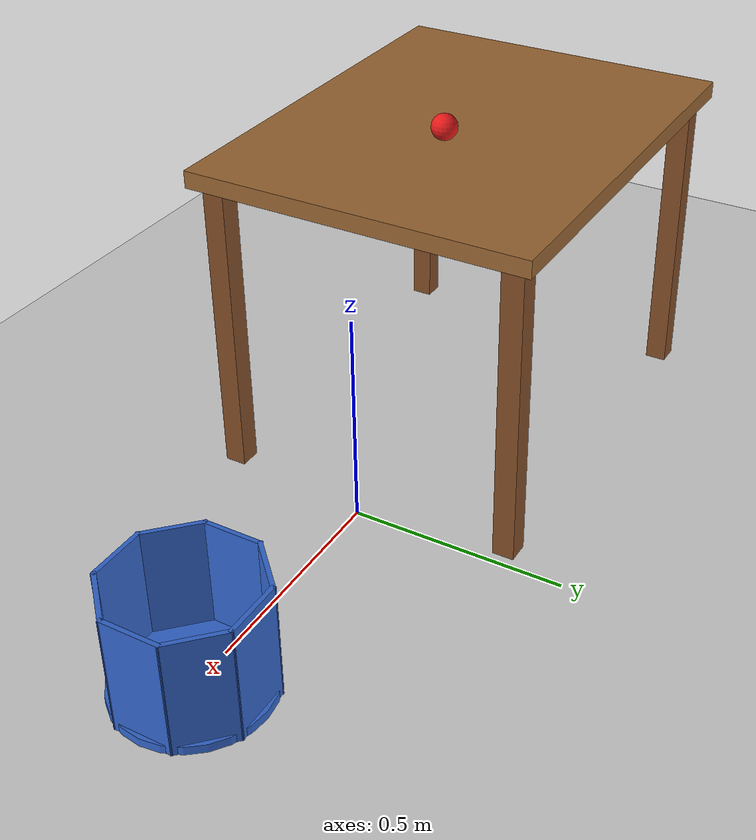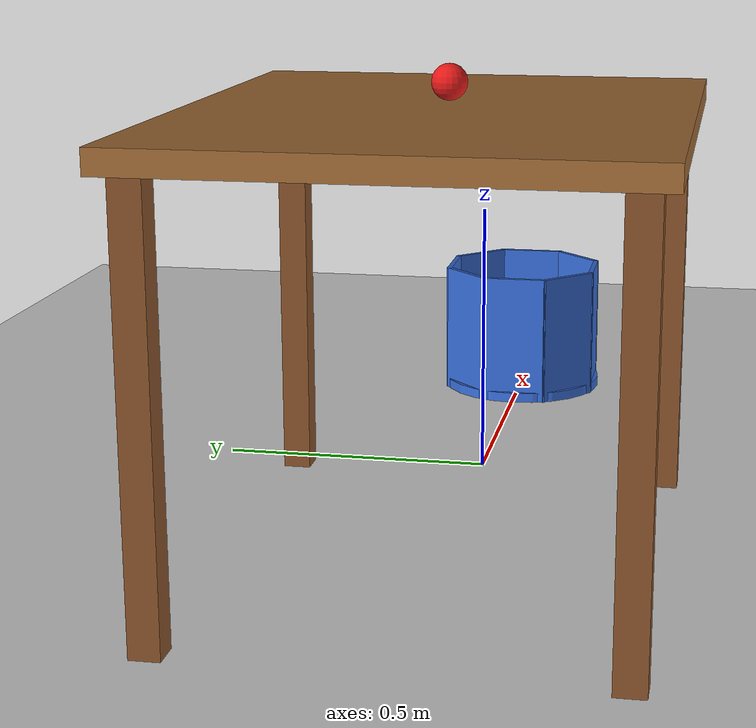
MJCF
<mujoco model="ball_off_table_into_bucket">
  <option timestep="0.002" gravity="0 0 -9.81"/>

  <worldbody>
    <light name="sun" pos="0 0 3" dir="0 0 -1" directional="true"/>
    <geom name="floor" type="plane" size="5 5 0.1" rgba="0.8 0.8 0.8 1"/>

    <!-- Table: top surface at z = 0.75, edge at x = 0 -->
    <geom name="table_top" type="box" pos="-0.5 0 0.73" size="0.5 0.4 0.02" friction="0.8 0.005 0.0001" condim="6" rgba="0.6 0.4 0.2 1"/>
    <geom name="table_leg1" type="box" pos="-0.05 0.35 0.355" size="0.025 0.025 0.355" rgba="0.5 0.3 0.15 1"/>
    <geom name="table_leg2" type="box" pos="-0.05 -0.35 0.355" size="0.025 0.025 0.355" rgba="0.5 0.3 0.15 1"/>
    <geom name="table_leg3" type="box" pos="-0.95 0.35 0.355" size="0.025 0.025 0.355" rgba="0.5 0.3 0.15 1"/>
    <geom name="table_leg4" type="box" pos="-0.95 -0.35 0.355" size="0.025 0.025 0.355" rgba="0.5 0.3 0.15 1"/>

    <!-- Bucket: centre 0.6 m beyond the table edge, inner radius 0.15, rim at 0.27 -->
    <body name="bucket" pos="0.6 0 0">
      <geom name="bucket_bottom" type="cylinder" pos="0 0 0.01" size="0.17 0.01" friction="1 0.05 0.03" condim="6" rgba="0.2 0.4 0.8 1"/>
      <geom name="bucket_wall0" type="box" pos="0.155 0 0.135" euler="0 0 0" size="0.005 0.068 0.135" rgba="0.2 0.4 0.8 1"/>
      <geom name="bucket_wall1" type="box" pos="0.1096 0.1096 0.135" euler="0 0 45" size="0.005 0.068 0.135" rgba="0.2 0.4 0.8 1"/>
      <geom name="bucket_wall2" type="box" pos="0 0.155 0.135" euler="0 0 90" size="0.005 0.068 0.135" rgba="0.2 0.4 0.8 1"/>
      <geom name="bucket_wall3" type="box" pos="-0.1096 0.1096 0.135" euler="0 0 135" size="0.005 0.068 0.135" rgba="0.2 0.4 0.8 1"/>
      <geom name="bucket_wall4" type="box" pos="-0.155 0 0.135" euler="0 0 180" size="0.005 0.068 0.135" rgba="0.2 0.4 0.8 1"/>
      <geom name="bucket_wall5" type="box" pos="-0.1096 -0.1096 0.135" euler="0 0 225" size="0.005 0.068 0.135" rgba="0.2 0.4 0.8 1"/>
      <geom name="bucket_wall6" type="box" pos="0 -0.155 0.135" euler="0 0 270" size="0.005 0.068 0.135" rgba="0.2 0.4 0.8 1"/>
      <geom name="bucket_wall7" type="box" pos="0.1096 -0.1096 0.135" euler="0 0 315" size="0.005 0.068 0.135" rgba="0.2 0.4 0.8 1"/>
    </body>

    <!-- Ball: radius 0.03, resting on the table top -->
    <body name="ball" pos="-0.4 0 0.78">
      <freejoint name="ball_free"/>
      <geom name="ball" type="sphere" size="0.03" density="1000" friction="0.8 0.005 0.0001" condim="6" rgba="0.9 0.1 0.1 1"/>
    </body>
  </worldbody>

  <keyframe>
    <key name="start" qpos="-0.4 0 0.78 1 0 0 0" qvel="1.6 0 0 0 53.333 0"/>
  </keyframe>
</mujoco>
